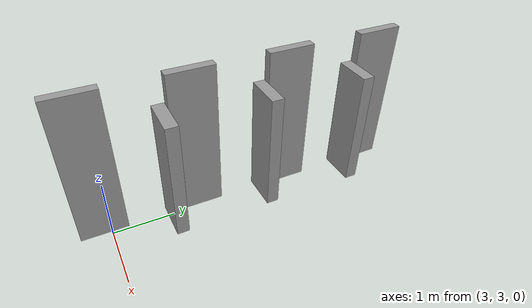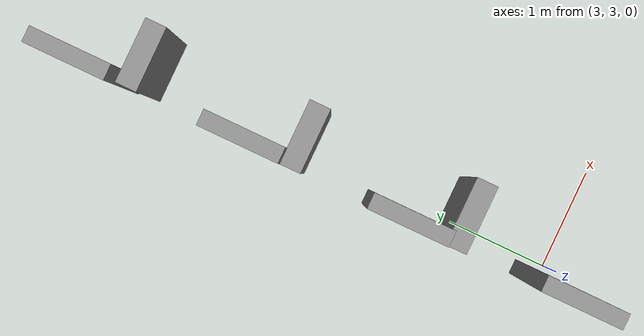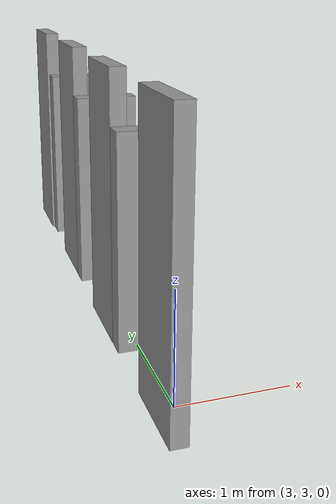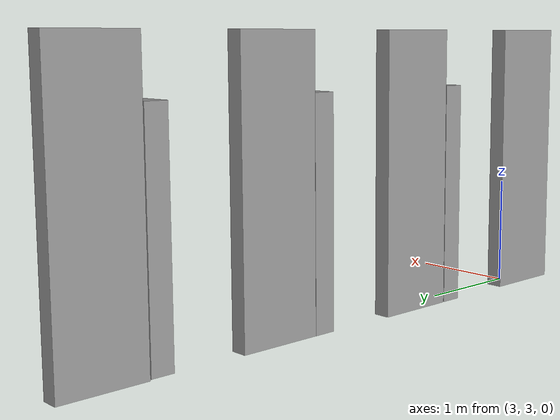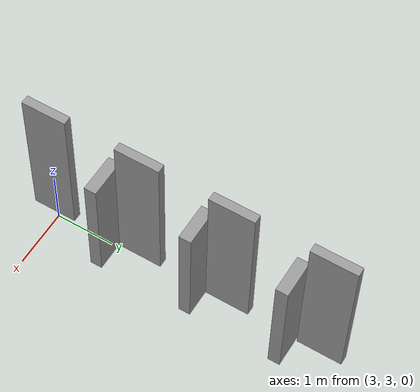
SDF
<?xml version='1.0'?>
<sdf version='1.6'>
  <model name='Room_With_large_doors'>
    <pose frame=''>2.88597 5.27894 0 0 -0 0</pose>
    <link name='Door_0'>
      <collision name='Door_0_Collision'>
        <geometry>
          <box>
            <size>0.644268 0.2 2</size>
          </box>
        </geometry>
        <pose frame=''>0 0 1 0 -0 0</pose>
      </collision>
      <visual name='Door_0_Visual'>
        <pose frame=''>0 0 1 0 -0 0</pose>
        <geometry>
          <box>
            <size>0.644268 0.2 2</size>
          </box>
        </geometry>
        <material>
          <script>
            <uri>file://media/materials/scripts/gazebo.material</uri>
            <name>Gazebo/Grey</name>
          </script>
        </material>
      </visual>
      <pose frame=''>0.236992 -1.2733 0 0 -0 0</pose>
    </link>
    <link name='Door_1'>
      <collision name='Door_1_Collision'>
        <geometry>
          <box>
            <size>0.615386 0.2 2</size>
          </box>
        </geometry>
        <pose frame=''>0 0 1 0 -0 0</pose>
      </collision>
      <visual name='Door_1_Visual'>
        <pose frame=''>0 0 1 0 -0 0</pose>
        <geometry>
          <box>
            <size>0.615386 0.2 2</size>
          </box>
        </geometry>
        <material>
          <script>
            <uri>file://media/materials/scripts/gazebo.material</uri>
            <name>Gazebo/Grey</name>
          </script>
        </material>
      </visual>
      <pose frame=''>0.240769 0.315212 0 0 -0 0</pose>
    </link>
    <link name='Door_2'>
      <collision name='Door_2_Collision'>
        <geometry>
          <box>
            <size>0.615262 0.2 2</size>
          </box>
        </geometry>
        <pose frame=''>0 0 1 0 -0 0</pose>
      </collision>
      <visual name='Door_2_Visual'>
        <pose frame=''>0 0 1 0 -0 0</pose>
        <geometry>
          <box>
            <size>0.615262 0.2 2</size>
          </box>
        </geometry>
        <material>
          <script>
            <uri>file://media/materials/scripts/gazebo.material</uri>
            <name>Gazebo/Grey</name>
          </script>
        </material>
      </visual>
      <pose frame=''>0.272207 1.89124 0 0 -0 0</pose>
    </link>
    <link name='Wall_11'>
      <collision name='Wall_11_Collision'>
        <geometry>
          <box>
            <size>0.75 0.15 2.5</size>
          </box>
        </geometry>
        <pose frame=''>0 0 1.25 0 -0 0</pose>
      </collision>
      <visual name='Wall_11_Visual'>
        <pose frame=''>0 0 1.25 0 -0 0</pose>
        <geometry>
          <box>
            <size>0.75 0.15 2.5</size>
          </box>
        </geometry>
        <material>
          <script>
            <uri>file://media/materials/scripts/gazebo.material</uri>
            <name>Gazebo/Grey</name>
          </script>
          <ambient>1 1 1 1</ambient>
        </material>
        <meta>
          <layer>0</layer>
        </meta>
      </visual>
      <pose frame=''>0.015967 2.38894 0 0 -0 1.5708</pose>
    </link>
    <link name='Wall_13'>
      <collision name='Wall_13_Collision'>
        <geometry>
          <box>
            <size>0.75 0.15 2.5</size>
          </box>
        </geometry>
        <pose frame=''>0 0 1.25 0 -0 0</pose>
      </collision>
      <visual name='Wall_13_Visual'>
        <pose frame=''>0 0 1.25 0 -0 0</pose>
        <geometry>
          <box>
            <size>0.75 0.15 2.5</size>
          </box>
        </geometry>
        <material>
          <script>
            <uri>file://media/materials/scripts/gazebo.material</uri>
            <name>Gazebo/Grey</name>
          </script>
          <ambient>1 1 1 1</ambient>
        </material>
        <meta>
          <layer>0</layer>
        </meta>
      </visual>
      <pose frame=''>-0.012108 -0.790834 0 0 -0 1.5708</pose>
    </link>
    <link name='Wall_15'>
      <collision name='Wall_15_Collision'>
        <geometry>
          <box>
            <size>0.75 0.15 2.5</size>
          </box>
        </geometry>
        <pose frame=''>0 0 1.25 0 -0 0</pose>
      </collision>
      <visual name='Wall_15_Visual'>
        <pose frame=''>0 0 1.25 0 -0 0</pose>
        <geometry>
          <box>
            <size>0.75 0.15 2.5</size>
          </box>
        </geometry>
        <material>
          <script>
            <uri>file://media/materials/scripts/gazebo.material</uri>
            <name>Gazebo/Grey</name>
          </script>
          <ambient>1 1 1 1</ambient>
        </material>
        <meta>
          <layer>0</layer>
        </meta>
      </visual>
      <pose frame=''>0.009542 0.786692 0 0 -0 1.5708</pose>
    </link>
    <link name='Wall_7'>
      <collision name='Wall_7_Collision'>
        <geometry>
          <box>
            <size>0.75 0.15 2.5</size>
          </box>
        </geometry>
        <pose frame=''>0 0 1.25 0 -0 0</pose>
      </collision>
      <visual name='Wall_7_Visual'>
        <pose frame=''>0 0 1.25 0 -0 0</pose>
        <geometry>
          <box>
            <size>0.75 0.15 2.5</size>
          </box>
        </geometry>
        <material>
          <script>
            <uri>file://media/materials/scripts/gazebo.material</uri>
            <name>Gazebo/Grey</name>
          </script>
          <ambient>1 1 1 1</ambient>
        </material>
        <meta>
          <layer>0</layer>
        </meta>
      </visual>
      <pose frame=''>-0.015967 -2.38894 0 0 -0 -1.5708</pose>
    </link>
    <static>1</static>
  </model>
</sdf>
